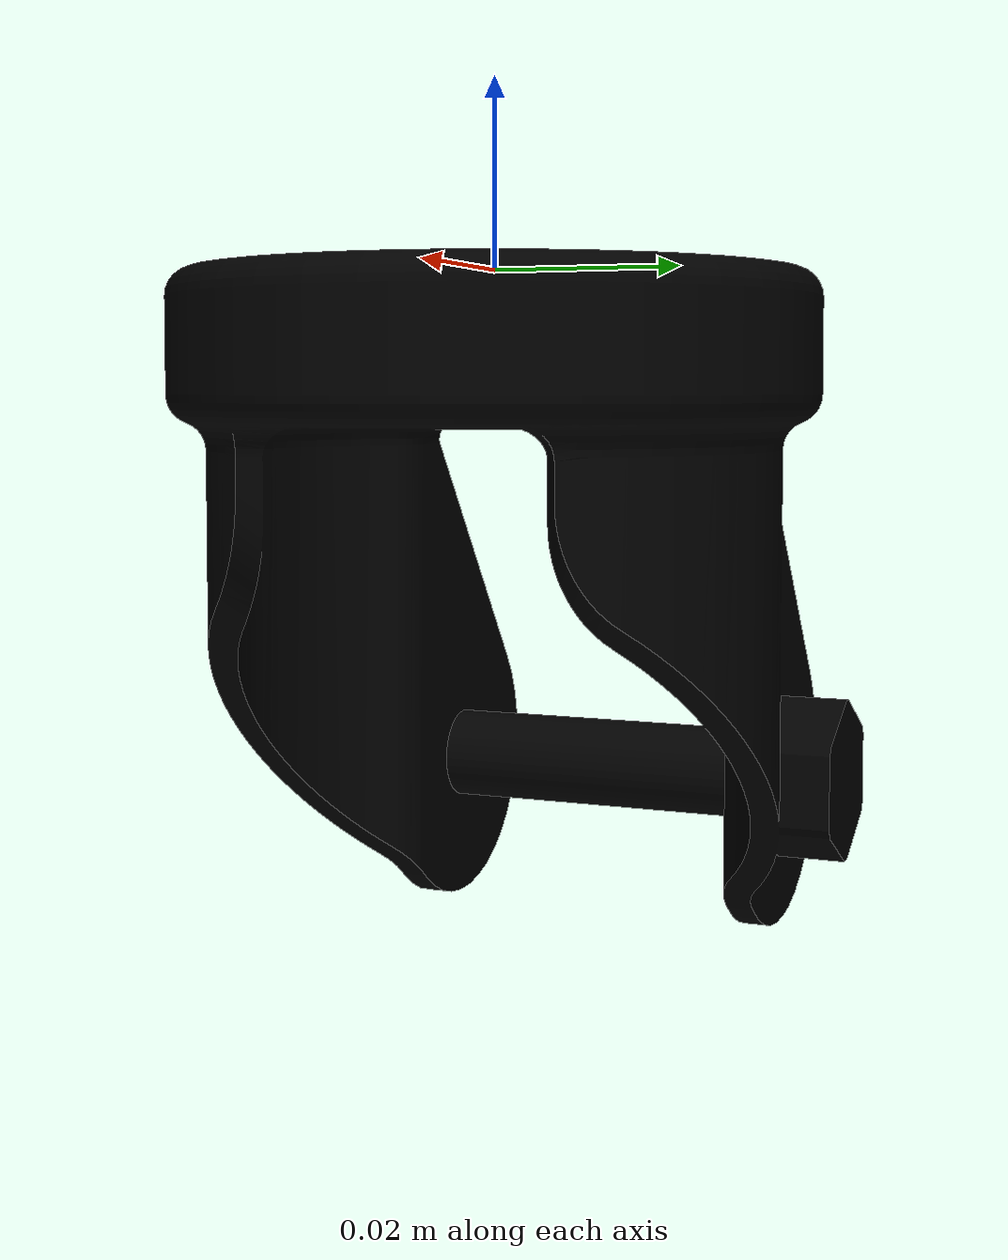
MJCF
<mujoco model="B_wheel_l1">
  <default>
    <default class="visual">
      <geom group="2" type="mesh" contype="0" conaffinity="0"/>
    </default>
    <default class="collision">
      <geom group="3" type="mesh"/>
    </default>
  </default>
  <asset>
    <material name="material_0" specular="0.4000000000000001" shininess="0.001" rgba="0.00000000 0.00000000 0.00000000 1.0"/>
    <mesh file="B_wheel_l1.obj"/>
  </asset>
  <worldbody>
    <body name="B_wheel_l1">
      <geom material="material_0" mesh="B_wheel_l1" class="visual"/>
    </body>
  </worldbody>
</mujoco>
